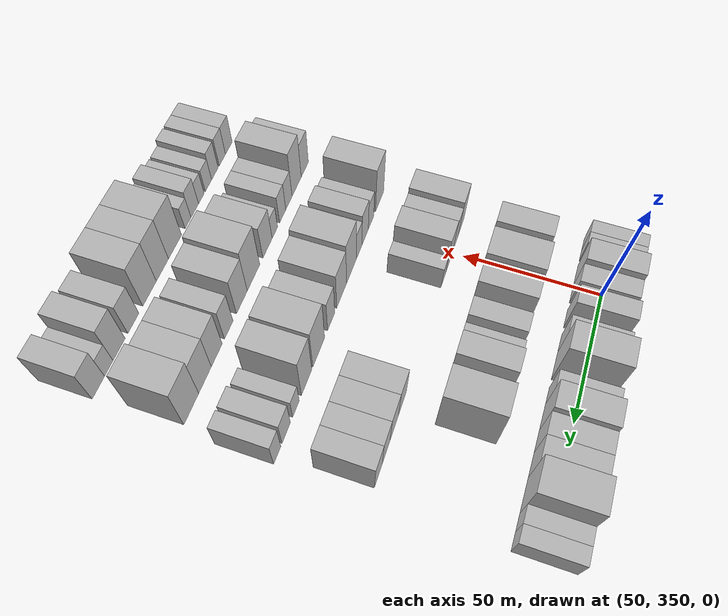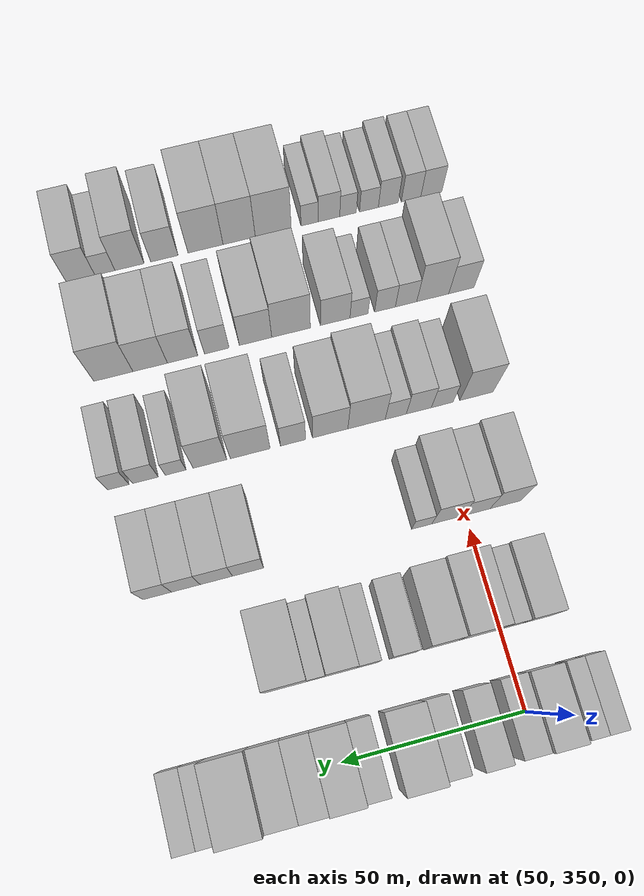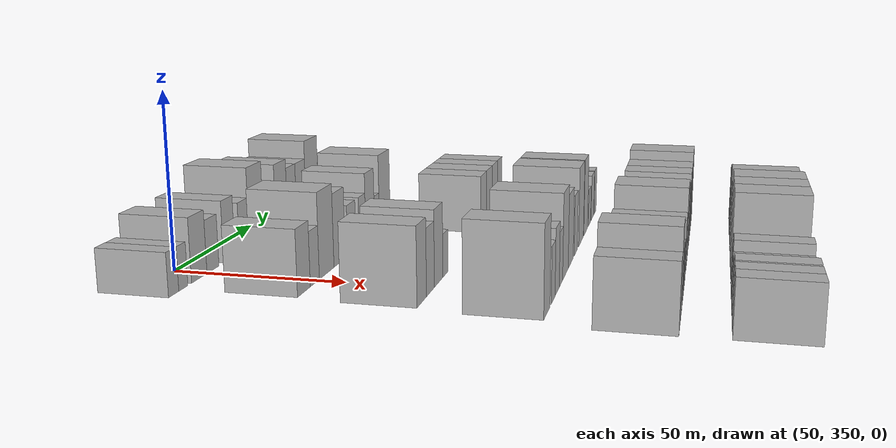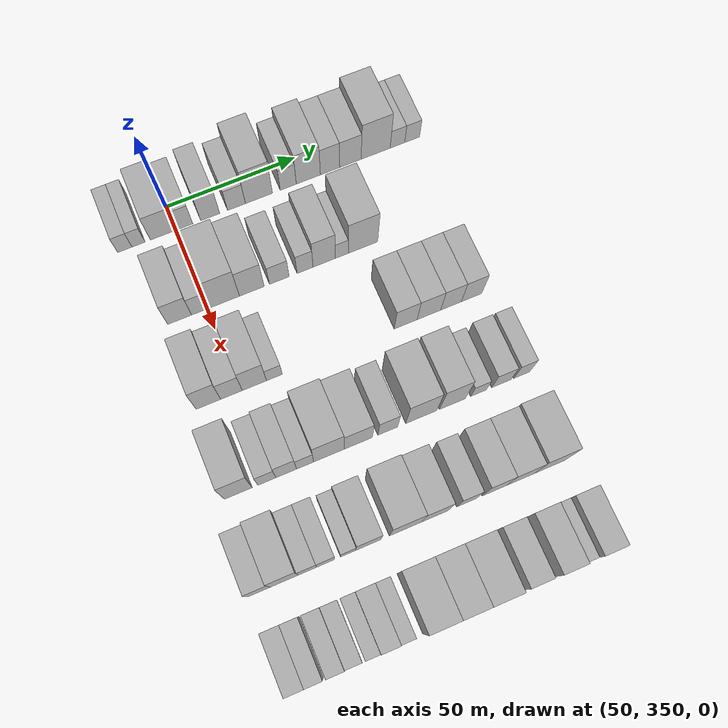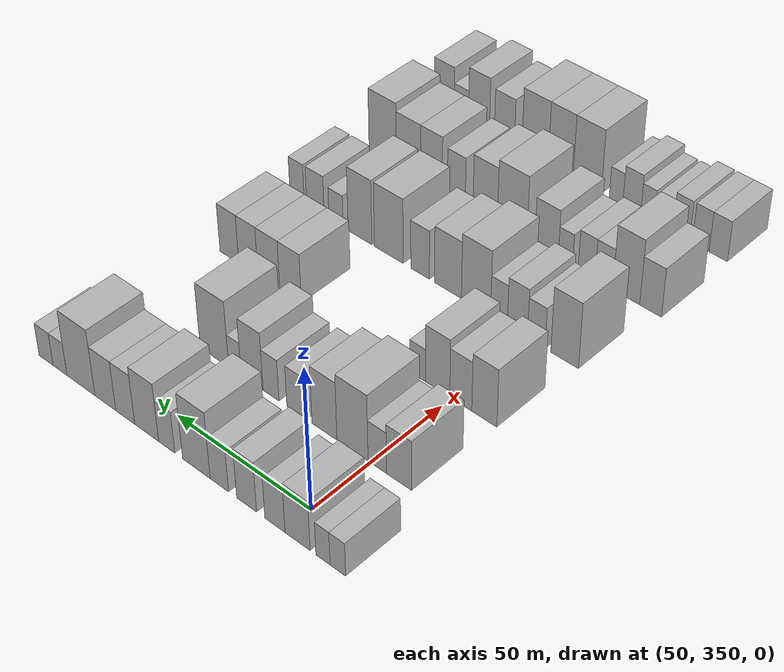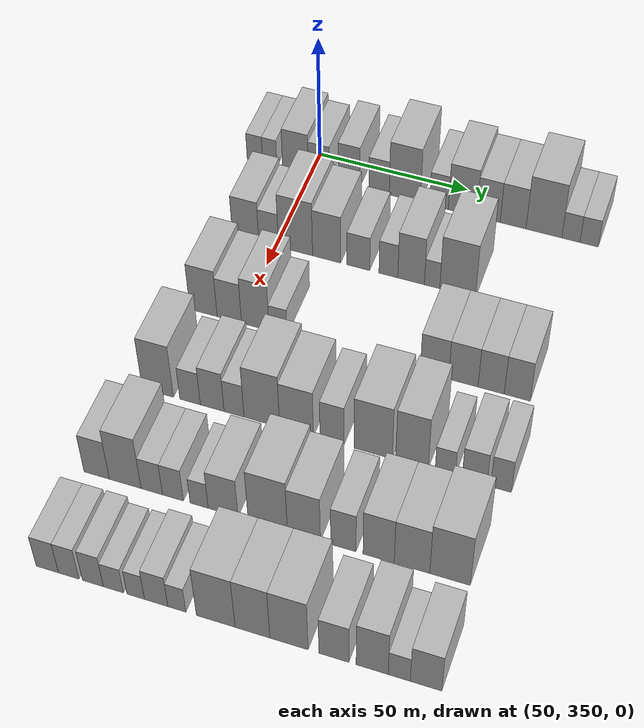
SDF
<sdf version="1.6">
 <world name="default">
  <model name="building_95">
   <static>1</static>
   <pose>50.0000 330.9651 0 0.000000 0.000000 0.000000</pose>
   <link name="link">
    <pose>0 0 6.00 0 0 0</pose>
    <collision name="collision"><geometry><box><size>20.0000 5.3511 12.0000</size></box></geometry></collision>
    <visual name="visual">
     <cast_shadows>0</cast_shadows>
     <geometry><box><size>20.0000 5.3511 12.0000</size></box></geometry>
     <material>
      <script>
       <uri>model://HANNAS_wall/materials/scripts</uri>
       <uri>model://HANNAS_wall/materials/textures</uri>
       <name>vrc/HANNAS_wall</name>
      </script>
     </material>
    </visual>
   </link>
  </model>
  <model name="building_96">
   <static>1</static>
   <pose>50.0000 336.0909 0 0.000000 0.000000 0.000000</pose>
   <link name="link">
    <pose>0 0 6.00 0 0 0</pose>
    <collision name="collision"><geometry><box><size>20.0000 4.9005 12.0000</size></box></geometry></collision>
    <visual name="visual">
     <cast_shadows>0</cast_shadows>
     <geometry><box><size>20.0000 4.9005 12.0000</size></box></geometry>
     <material>
      <script>
       <uri>model://HANNAS_wall/materials/scripts</uri>
       <uri>model://HANNAS_wall/materials/textures</uri>
       <name>vrc/HANNAS_wall</name>
      </script>
     </material>
    </visual>
   </link>
  </model>
  <model name="building_97">
   <static>1</static>
   <pose>50.0000 344.9675 0 0.000000 0.000000 0.000000</pose>
   <link name="link">
    <pose>0 0 9.00 0 0 0</pose>
    <collision name="collision"><geometry><box><size>20.0000 8.8527 18.0000</size></box></geometry></collision>
    <visual name="visual">
     <cast_shadows>0</cast_shadows>
     <geometry><box><size>20.0000 8.8527 18.0000</size></box></geometry>
     <material>
      <script>
       <uri>model://HANNAS_wall/materials/scripts</uri>
       <uri>model://HANNAS_wall/materials/textures</uri>
       <name>vrc/HANNAS_wall</name>
      </script>
     </material>
    </visual>
   </link>
  </model>
  <model name="building_98">
   <static>1</static>
   <pose>50.0000 353.0177 0 0.000000 0.000000 0.000000</pose>
   <link name="link">
    <pose>0 0 7.50 0 0 0</pose>
    <collision name="collision"><geometry><box><size>20.0000 7.2477 15.0000</size></box></geometry></collision>
    <visual name="visual">
     <cast_shadows>0</cast_shadows>
     <geometry><box><size>20.0000 7.2477 15.0000</size></box></geometry>
     <material>
      <script>
       <uri>model://HANNAS_wall/materials/scripts</uri>
       <uri>model://HANNAS_wall/materials/textures</uri>
       <name>vrc/HANNAS_wall</name>
      </script>
     </material>
    </visual>
   </link>
  </model>
  <model name="building_99">
   <static>1</static>
   <pose>50.0000 363.2852 0 0.000000 0.000000 0.000000</pose>
   <link name="link">
    <pose>0 0 9.00 0 0 0</pose>
    <collision name="collision"><geometry><box><size>20.0000 7.2873 18.0000</size></box></geometry></collision>
    <visual name="visual">
     <cast_shadows>0</cast_shadows>
     <geometry><box><size>20.0000 7.2873 18.0000</size></box></geometry>
     <material>
      <script>
       <uri>model://HANNAS_wall/materials/scripts</uri>
       <uri>model://HANNAS_wall/materials/textures</uri>
       <name>vrc/HANNAS_wall</name>
      </script>
     </material>
    </visual>
   </link>
  </model>
  <model name="building_100">
   <static>1</static>
   <pose>50.0000 373.3646 0 0.000000 0.000000 0.000000</pose>
   <link name="link">
    <pose>0 0 7.50 0 0 0</pose>
    <collision name="collision"><geometry><box><size>20.0000 6.8715 15.0000</size></box></geometry></collision>
    <visual name="visual">
     <cast_shadows>0</cast_shadows>
     <geometry><box><size>20.0000 6.8715 15.0000</size></box></geometry>
     <material>
      <script>
       <uri>model://HANNAS_wall/materials/scripts</uri>
       <uri>model://HANNAS_wall/materials/textures</uri>
       <name>vrc/HANNAS_wall</name>
      </script>
     </material>
    </visual>
   </link>
  </model>
  <model name="building_101">
   <static>1</static>
   <pose>50.0000 382.0335 0 0.000000 0.000000 0.000000</pose>
   <link name="link">
    <pose>0 0 12.00 0 0 0</pose>
    <collision name="collision"><geometry><box><size>20.0000 10.4663 24.0000</size></box></geometry></collision>
    <visual name="visual">
     <cast_shadows>0</cast_shadows>
     <geometry><box><size>20.0000 10.4663 24.0000</size></box></geometry>
     <material>
      <script>
       <uri>model://HANNAS_wall/materials/scripts</uri>
       <uri>model://HANNAS_wall/materials/textures</uri>
       <name>vrc/HANNAS_wall</name>
      </script>
     </material>
    </visual>
   </link>
  </model>
  <model name="building_102">
   <static>1</static>
   <pose>50.0000 393.3994 0 0.000000 0.000000 0.000000</pose>
   <link name="link">
    <pose>0 0 7.50 0 0 0</pose>
    <collision name="collision"><geometry><box><size>20.0000 6.2655 15.0000</size></box></geometry></collision>
    <visual name="visual">
     <cast_shadows>0</cast_shadows>
     <geometry><box><size>20.0000 6.2655 15.0000</size></box></geometry>
     <material>
      <script>
       <uri>model://HANNAS_wall/materials/scripts</uri>
       <uri>model://HANNAS_wall/materials/textures</uri>
       <name>vrc/HANNAS_wall</name>
      </script>
     </material>
    </visual>
   </link>
  </model>
  <model name="building_103">
   <static>1</static>
   <pose>50.0000 401.2380 0 0.000000 0.000000 0.000000</pose>
   <link name="link">
    <pose>0 0 10.50 0 0 0</pose>
    <collision name="collision"><geometry><box><size>20.0000 9.4116 21.0000</size></box></geometry></collision>
    <visual name="visual">
     <cast_shadows>0</cast_shadows>
     <geometry><box><size>20.0000 9.4116 21.0000</size></box></geometry>
     <material>
      <script>
       <uri>model://HANNAS_wall/materials/scripts</uri>
       <uri>model://HANNAS_wall/materials/textures</uri>
       <name>vrc/HANNAS_wall</name>
      </script>
     </material>
    </visual>
   </link>
  </model>
  <model name="building_104">
   <static>1</static>
   <pose>50.0000 409.7510 0 0.000000 0.000000 0.000000</pose>
   <link name="link">
    <pose>0 0 9.00 0 0 0</pose>
    <collision name="collision"><geometry><box><size>20.0000 7.6143 18.0000</size></box></geometry></collision>
    <visual name="visual">
     <cast_shadows>0</cast_shadows>
     <geometry><box><size>20.0000 7.6143 18.0000</size></box></geometry>
     <material>
      <script>
       <uri>model://HANNAS_wall/materials/scripts</uri>
       <uri>model://HANNAS_wall/materials/textures</uri>
       <name>vrc/HANNAS_wall</name>
      </script>
     </material>
    </visual>
   </link>
  </model>
  <model name="building_105">
   <static>1</static>
   <pose>50.0000 417.7741 0 0.000000 0.000000 0.000000</pose>
   <link name="link">
    <pose>0 0 9.00 0 0 0</pose>
    <collision name="collision"><geometry><box><size>20.0000 8.4319 18.0000</size></box></geometry></collision>
    <visual name="visual">
     <cast_shadows>0</cast_shadows>
     <geometry><box><size>20.0000 8.4319 18.0000</size></box></geometry>
     <material>
      <script>
       <uri>model://HANNAS_wall/materials/scripts</uri>
       <uri>model://HANNAS_wall/materials/textures</uri>
       <name>vrc/HANNAS_wall</name>
      </script>
     </material>
    </visual>
   </link>
  </model>
  <model name="building_106">
   <static>1</static>
   <pose>50.0000 427.7877 0 0.000000 0.000000 0.000000</pose>
   <link name="link">
    <pose>0 0 12.00 0 0 0</pose>
    <collision name="collision"><geometry><box><size>20.0000 11.5953 24.0000</size></box></geometry></collision>
    <visual name="visual">
     <cast_shadows>0</cast_shadows>
     <geometry><box><size>20.0000 11.5953 24.0000</size></box></geometry>
     <material>
      <script>
       <uri>model://HANNAS_wall/materials/scripts</uri>
       <uri>model://HANNAS_wall/materials/textures</uri>
       <name>vrc/HANNAS_wall</name>
      </script>
     </material>
    </visual>
   </link>
  </model>
  <model name="building_107">
   <static>1</static>
   <pose>50.0000 436.5020 0 0.000000 0.000000 0.000000</pose>
   <link name="link">
    <pose>0 0 6.00 0 0 0</pose>
    <collision name="collision"><geometry><box><size>20.0000 5.8332 12.0000</size></box></geometry></collision>
    <visual name="visual">
     <cast_shadows>0</cast_shadows>
     <geometry><box><size>20.0000 5.8332 12.0000</size></box></geometry>
     <material>
      <script>
       <uri>model://HANNAS_wall/materials/scripts</uri>
       <uri>model://HANNAS_wall/materials/textures</uri>
       <name>vrc/HANNAS_wall</name>
      </script>
     </material>
    </visual>
   </link>
  </model>
  <model name="building_108">
   <static>1</static>
   <pose>50.0000 442.3752 0 0.000000 0.000000 0.000000</pose>
   <link name="link">
    <pose>0 0 6.00 0 0 0</pose>
    <collision name="collision"><geometry><box><size>20.0000 5.9131 12.0000</size></box></geometry></collision>
    <visual name="visual">
     <cast_shadows>0</cast_shadows>
     <geometry><box><size>20.0000 5.9131 12.0000</size></box></geometry>
     <material>
      <script>
       <uri>model://HANNAS_wall/materials/scripts</uri>
       <uri>model://HANNAS_wall/materials/textures</uri>
       <name>vrc/HANNAS_wall</name>
      </script>
     </material>
    </visual>
   </link>
  </model>
  <model name="building_215">
   <static>1</static>
   <pose>82.0000 339.9055 0 0.000000 0.000000 0.000000</pose>
   <link name="link">
    <pose>0 0 9.00 0 0 0</pose>
    <collision name="collision"><geometry><box><size>20.0000 8.8324 18.0000</size></box></geometry></collision>
    <visual name="visual">
     <cast_shadows>0</cast_shadows>
     <geometry><box><size>20.0000 8.8324 18.0000</size></box></geometry>
     <material>
      <script>
       <uri>model://HANNAS_wall/materials/scripts</uri>
       <uri>model://HANNAS_wall/materials/textures</uri>
       <name>vrc/HANNAS_wall</name>
      </script>
     </material>
    </visual>
   </link>
  </model>
  <model name="building_216">
   <static>1</static>
   <pose>82.0000 347.6006 0 0.000000 0.000000 0.000000</pose>
   <link name="link">
    <pose>0 0 7.50 0 0 0</pose>
    <collision name="collision"><geometry><box><size>20.0000 6.5579 15.0000</size></box></geometry></collision>
    <visual name="visual">
     <cast_shadows>0</cast_shadows>
     <geometry><box><size>20.0000 6.5579 15.0000</size></box></geometry>
     <material>
      <script>
       <uri>model://HANNAS_wall/materials/scripts</uri>
       <uri>model://HANNAS_wall/materials/textures</uri>
       <name>vrc/HANNAS_wall</name>
      </script>
     </material>
    </visual>
   </link>
  </model>
  <model name="building_217">
   <static>1</static>
   <pose>82.0000 356.5135 0 0.000000 0.000000 0.000000</pose>
   <link name="link">
    <pose>0 0 12.00 0 0 0</pose>
    <collision name="collision"><geometry><box><size>20.0000 11.2678 24.0000</size></box></geometry></collision>
    <visual name="visual">
     <cast_shadows>0</cast_shadows>
     <geometry><box><size>20.0000 11.2678 24.0000</size></box></geometry>
     <material>
      <script>
       <uri>model://HANNAS_wall/materials/scripts</uri>
       <uri>model://HANNAS_wall/materials/textures</uri>
       <name>vrc/HANNAS_wall</name>
      </script>
     </material>
    </visual>
   </link>
  </model>
  <model name="building_218">
   <static>1</static>
   <pose>82.0000 366.7776 0 0.000000 0.000000 0.000000</pose>
   <link name="link">
    <pose>0 0 10.50 0 0 0</pose>
    <collision name="collision"><geometry><box><size>20.0000 9.2605 21.0000</size></box></geometry></collision>
    <visual name="visual">
     <cast_shadows>0</cast_shadows>
     <geometry><box><size>20.0000 9.2605 21.0000</size></box></geometry>
     <material>
      <script>
       <uri>model://HANNAS_wall/materials/scripts</uri>
       <uri>model://HANNAS_wall/materials/textures</uri>
       <name>vrc/HANNAS_wall</name>
      </script>
     </material>
    </visual>
   </link>
  </model>
  <model name="building_219">
   <static>1</static>
   <pose>82.0000 377.1192 0 0.000000 0.000000 0.000000</pose>
   <link name="link">
    <pose>0 0 7.50 0 0 0</pose>
    <collision name="collision"><geometry><box><size>20.0000 7.4227 15.0000</size></box></geometry></collision>
    <visual name="visual">
     <cast_shadows>0</cast_shadows>
     <geometry><box><size>20.0000 7.4227 15.0000</size></box></geometry>
     <material>
      <script>
       <uri>model://HANNAS_wall/materials/scripts</uri>
       <uri>model://HANNAS_wall/materials/textures</uri>
       <name>vrc/HANNAS_wall</name>
      </script>
     </material>
    </visual>
   </link>
  </model>
  <model name="building_220">
   <static>1</static>
   <pose>82.0000 386.8757 0 0.000000 0.000000 0.000000</pose>
   <link name="link">
    <pose>0 0 7.50 0 0 0</pose>
    <collision name="collision"><geometry><box><size>20.0000 6.0902 15.0000</size></box></geometry></collision>
    <visual name="visual">
     <cast_shadows>0</cast_shadows>
     <geometry><box><size>20.0000 6.0902 15.0000</size></box></geometry>
     <material>
      <script>
       <uri>model://HANNAS_wall/materials/scripts</uri>
       <uri>model://HANNAS_wall/materials/textures</uri>
       <name>vrc/HANNAS_wall</name>
      </script>
     </material>
    </visual>
   </link>
  </model>
  <model name="building_221">
   <static>1</static>
   <pose>82.0000 394.1992 0 0.000000 0.000000 0.000000</pose>
   <link name="link">
    <pose>0 0 10.50 0 0 0</pose>
    <collision name="collision"><geometry><box><size>20.0000 8.5570 21.0000</size></box></geometry></collision>
    <visual name="visual">
     <cast_shadows>0</cast_shadows>
     <geometry><box><size>20.0000 8.5570 21.0000</size></box></geometry>
     <material>
      <script>
       <uri>model://HANNAS_wall/materials/scripts</uri>
       <uri>model://HANNAS_wall/materials/textures</uri>
       <name>vrc/HANNAS_wall</name>
      </script>
     </material>
    </visual>
   </link>
  </model>
  <model name="building_222">
   <static>1</static>
   <pose>82.0000 400.9262 0 0.000000 0.000000 0.000000</pose>
   <link name="link">
    <pose>0 0 6.00 0 0 0</pose>
    <collision name="collision"><geometry><box><size>20.0000 4.8971 12.0000</size></box></geometry></collision>
    <visual name="visual">
     <cast_shadows>0</cast_shadows>
     <geometry><box><size>20.0000 4.8971 12.0000</size></box></geometry>
     <material>
      <script>
       <uri>model://HANNAS_wall/materials/scripts</uri>
       <uri>model://HANNAS_wall/materials/textures</uri>
       <name>vrc/HANNAS_wall</name>
      </script>
     </material>
    </visual>
   </link>
  </model>
  <model name="building_223">
   <static>1</static>
   <pose>82.0000 409.0533 0 0.000000 0.000000 0.000000</pose>
   <link name="link">
    <pose>0 0 12.00 0 0 0</pose>
    <collision name="collision"><geometry><box><size>20.0000 11.3570 24.0000</size></box></geometry></collision>
    <visual name="visual">
     <cast_shadows>0</cast_shadows>
     <geometry><box><size>20.0000 11.3570 24.0000</size></box></geometry>
     <material>
      <script>
       <uri>model://HANNAS_wall/materials/scripts</uri>
       <uri>model://HANNAS_wall/materials/textures</uri>
       <name>vrc/HANNAS_wall</name>
      </script>
     </material>
    </visual>
   </link>
  </model>
  <model name="building_325">
   <static>1</static>
   <pose>114.0000 338.5198 0 0.000000 0.000000 0.000000</pose>
   <link name="link">
    <pose>0 0 10.50 0 0 0</pose>
    <collision name="collision"><geometry><box><size>20.0000 8.8559 21.0000</size></box></geometry></collision>
    <visual name="visual">
     <cast_shadows>0</cast_shadows>
     <geometry><box><size>20.0000 8.8559 21.0000</size></box></geometry>
     <material>
      <script>
       <uri>model://HANNAS_wall/materials/scripts</uri>
       <uri>model://HANNAS_wall/materials/textures</uri>
       <name>vrc/HANNAS_wall</name>
      </script>
     </material>
    </visual>
   </link>
  </model>
  <model name="building_326">
   <static>1</static>
   <pose>114.0000 346.8800 0 0.000000 0.000000 0.000000</pose>
   <link name="link">
    <pose>0 0 9.00 0 0 0</pose>
    <collision name="collision"><geometry><box><size>20.0000 7.8645 18.0000</size></box></geometry></collision>
    <visual name="visual">
     <cast_shadows>0</cast_shadows>
     <geometry><box><size>20.0000 7.8645 18.0000</size></box></geometry>
     <material>
      <script>
       <uri>model://HANNAS_wall/materials/scripts</uri>
       <uri>model://HANNAS_wall/materials/textures</uri>
       <name>vrc/HANNAS_wall</name>
      </script>
     </material>
    </visual>
   </link>
  </model>
  <model name="building_327">
   <static>1</static>
   <pose>114.0000 355.2289 0 0.000000 0.000000 0.000000</pose>
   <link name="link">
    <pose>0 0 10.50 0 0 0</pose>
    <collision name="collision"><geometry><box><size>20.0000 8.8331 21.0000</size></box></geometry></collision>
    <visual name="visual">
     <cast_shadows>0</cast_shadows>
     <geometry><box><size>20.0000 8.8331 21.0000</size></box></geometry>
     <material>
      <script>
       <uri>model://HANNAS_wall/materials/scripts</uri>
       <uri>model://HANNAS_wall/materials/textures</uri>
       <name>vrc/HANNAS_wall</name>
      </script>
     </material>
    </visual>
   </link>
  </model>
  <model name="building_328">
   <static>1</static>
   <pose>114.0000 362.5262 0 0.000000 0.000000 0.000000</pose>
   <link name="link">
    <pose>0 0 6.00 0 0 0</pose>
    <collision name="collision"><geometry><box><size>20.0000 5.7616 12.0000</size></box></geometry></collision>
    <visual name="visual">
     <cast_shadows>0</cast_shadows>
     <geometry><box><size>20.0000 5.7616 12.0000</size></box></geometry>
     <material>
      <script>
       <uri>model://HANNAS_wall/materials/scripts</uri>
       <uri>model://HANNAS_wall/materials/textures</uri>
       <name>vrc/HANNAS_wall</name>
      </script>
     </material>
    </visual>
   </link>
  </model>
  <model name="building_329">
   <static>1</static>
   <pose>114.0000 411.4403 0 0.000000 0.000000 0.000000</pose>
   <link name="link">
    <pose>0 0 9.00 0 0 0</pose>
    <collision name="collision"><geometry><box><size>20.0000 8.6888 18.0000</size></box></geometry></collision>
    <visual name="visual">
     <cast_shadows>0</cast_shadows>
     <geometry><box><size>20.0000 8.6888 18.0000</size></box></geometry>
     <material>
      <script>
       <uri>model://HANNAS_wall/materials/scripts</uri>
       <uri>model://HANNAS_wall/materials/textures</uri>
       <name>vrc/HANNAS_wall</name>
      </script>
     </material>
    </visual>
   </link>
  </model>
  <model name="building_330">
   <static>1</static>
   <pose>114.0000 420.2679 0 0.000000 0.000000 0.000000</pose>
   <link name="link">
    <pose>0 0 9.00 0 0 0</pose>
    <collision name="collision"><geometry><box><size>20.0000 8.9664 18.0000</size></box></geometry></collision>
    <visual name="visual">
     <cast_shadows>0</cast_shadows>
     <geometry><box><size>20.0000 8.9664 18.0000</size></box></geometry>
     <material>
      <script>
       <uri>model://HANNAS_wall/materials/scripts</uri>
       <uri>model://HANNAS_wall/materials/textures</uri>
       <name>vrc/HANNAS_wall</name>
      </script>
     </material>
    </visual>
   </link>
  </model>
  <model name="building_331">
   <static>1</static>
   <pose>114.0000 428.7092 0 0.000000 0.000000 0.000000</pose>
   <link name="link">
    <pose>0 0 9.00 0 0 0</pose>
    <collision name="collision"><geometry><box><size>20.0000 7.9162 18.0000</size></box></geometry></collision>
    <visual name="visual">
     <cast_shadows>0</cast_shadows>
     <geometry><box><size>20.0000 7.9162 18.0000</size></box></geometry>
     <material>
      <script>
       <uri>model://HANNAS_wall/materials/scripts</uri>
       <uri>model://HANNAS_wall/materials/textures</uri>
       <name>vrc/HANNAS_wall</name>
      </script>
     </material>
    </visual>
   </link>
  </model>
  <model name="building_332">
   <static>1</static>
   <pose>114.0000 436.5910 0 0.000000 0.000000 0.000000</pose>
   <link name="link">
    <pose>0 0 9.00 0 0 0</pose>
    <collision name="collision"><geometry><box><size>20.0000 7.8474 18.0000</size></box></geometry></collision>
    <visual name="visual">
     <cast_shadows>0</cast_shadows>
     <geometry><box><size>20.0000 7.8474 18.0000</size></box></geometry>
     <material>
      <script>
       <uri>model://HANNAS_wall/materials/scripts</uri>
       <uri>model://HANNAS_wall/materials/textures</uri>
       <name>vrc/HANNAS_wall</name>
      </script>
     </material>
    </visual>
   </link>
  </model>
  <model name="building_431">
   <static>1</static>
   <pose>146.0000 337.0014 0 0.000000 0.000000 0.000000</pose>
   <link name="link">
    <pose>0 0 12.00 0 0 0</pose>
    <collision name="collision"><geometry><box><size>20.0000 9.8233 24.0000</size></box></geometry></collision>
    <visual name="visual">
     <cast_shadows>0</cast_shadows>
     <geometry><box><size>20.0000 9.8233 24.0000</size></box></geometry>
     <material>
      <script>
       <uri>model://HANNAS_wall/materials/scripts</uri>
       <uri>model://HANNAS_wall/materials/textures</uri>
       <name>vrc/HANNAS_wall</name>
      </script>
     </material>
    </visual>
   </link>
  </model>
  <model name="building_432">
   <static>1</static>
   <pose>146.0000 347.1135 0 0.000000 0.000000 0.000000</pose>
   <link name="link">
    <pose>0 0 7.50 0 0 0</pose>
    <collision name="collision"><geometry><box><size>20.0000 6.4010 15.0000</size></box></geometry></collision>
    <visual name="visual">
     <cast_shadows>0</cast_shadows>
     <geometry><box><size>20.0000 6.4010 15.0000</size></box></geometry>
     <material>
      <script>
       <uri>model://HANNAS_wall/materials/scripts</uri>
       <uri>model://HANNAS_wall/materials/textures</uri>
       <name>vrc/HANNAS_wall</name>
      </script>
     </material>
    </visual>
   </link>
  </model>
  <model name="building_433">
   <static>1</static>
   <pose>146.0000 353.9999 0 0.000000 0.000000 0.000000</pose>
   <link name="link">
    <pose>0 0 9.00 0 0 0</pose>
    <collision name="collision"><geometry><box><size>20.0000 7.3718 18.0000</size></box></geometry></collision>
    <visual name="visual">
     <cast_shadows>0</cast_shadows>
     <geometry><box><size>20.0000 7.3718 18.0000</size></box></geometry>
     <material>
      <script>
       <uri>model://HANNAS_wall/materials/scripts</uri>
       <uri>model://HANNAS_wall/materials/textures</uri>
       <name>vrc/HANNAS_wall</name>
      </script>
     </material>
    </visual>
   </link>
  </model>
  <model name="building_434">
   <static>1</static>
   <pose>146.0000 360.7739 0 0.000000 0.000000 0.000000</pose>
   <link name="link">
    <pose>0 0 7.50 0 0 0</pose>
    <collision name="collision"><geometry><box><size>20.0000 6.1762 15.0000</size></box></geometry></collision>
    <visual name="visual">
     <cast_shadows>0</cast_shadows>
     <geometry><box><size>20.0000 6.1762 15.0000</size></box></geometry>
     <material>
      <script>
       <uri>model://HANNAS_wall/materials/scripts</uri>
       <uri>model://HANNAS_wall/materials/textures</uri>
       <name>vrc/HANNAS_wall</name>
      </script>
     </material>
    </visual>
   </link>
  </model>
  <model name="building_435">
   <static>1</static>
   <pose>146.0000 369.3236 0 0.000000 0.000000 0.000000</pose>
   <link name="link">
    <pose>0 0 12.00 0 0 0</pose>
    <collision name="collision"><geometry><box><size>20.0000 10.9232 24.0000</size></box></geometry></collision>
    <visual name="visual">
     <cast_shadows>0</cast_shadows>
     <geometry><box><size>20.0000 10.9232 24.0000</size></box></geometry>
     <material>
      <script>
       <uri>model://HANNAS_wall/materials/scripts</uri>
       <uri>model://HANNAS_wall/materials/textures</uri>
       <name>vrc/HANNAS_wall</name>
      </script>
     </material>
    </visual>
   </link>
  </model>
  <model name="building_436">
   <static>1</static>
   <pose>146.0000 379.9260 0 0.000000 0.000000 0.000000</pose>
   <link name="link">
    <pose>0 0 10.50 0 0 0</pose>
    <collision name="collision"><geometry><box><size>20.0000 10.2815 21.0000</size></box></geometry></collision>
    <visual name="visual">
     <cast_shadows>0</cast_shadows>
     <geometry><box><size>20.0000 10.2815 21.0000</size></box></geometry>
     <material>
      <script>
       <uri>model://HANNAS_wall/materials/scripts</uri>
       <uri>model://HANNAS_wall/materials/textures</uri>
       <name>vrc/HANNAS_wall</name>
      </script>
     </material>
    </visual>
   </link>
  </model>
  <model name="building_437">
   <static>1</static>
   <pose>146.0000 390.6860 0 0.000000 0.000000 0.000000</pose>
   <link name="link">
    <pose>0 0 9.00 0 0 0</pose>
    <collision name="collision"><geometry><box><size>20.0000 7.2386 18.0000</size></box></geometry></collision>
    <visual name="visual">
     <cast_shadows>0</cast_shadows>
     <geometry><box><size>20.0000 7.2386 18.0000</size></box></geometry>
     <material>
      <script>
       <uri>model://HANNAS_wall/materials/scripts</uri>
       <uri>model://HANNAS_wall/materials/textures</uri>
       <name>vrc/HANNAS_wall</name>
      </script>
     </material>
    </visual>
   </link>
  </model>
  <model name="building_438">
   <static>1</static>
   <pose>146.0000 403.0190 0 0.000000 0.000000 0.000000</pose>
   <link name="link">
    <pose>0 0 12.00 0 0 0</pose>
    <collision name="collision"><geometry><box><size>20.0000 11.4273 24.0000</size></box></geometry></collision>
    <visual name="visual">
     <cast_shadows>0</cast_shadows>
     <geometry><box><size>20.0000 11.4273 24.0000</size></box></geometry>
     <material>
      <script>
       <uri>model://HANNAS_wall/materials/scripts</uri>
       <uri>model://HANNAS_wall/materials/textures</uri>
       <name>vrc/HANNAS_wall</name>
      </script>
     </material>
    </visual>
   </link>
  </model>
  <model name="building_439">
   <static>1</static>
   <pose>146.0000 414.5593 0 0.000000 0.000000 0.000000</pose>
   <link name="link">
    <pose>0 0 12.00 0 0 0</pose>
    <collision name="collision"><geometry><box><size>20.0000 9.6533 24.0000</size></box></geometry></collision>
    <visual name="visual">
     <cast_shadows>0</cast_shadows>
     <geometry><box><size>20.0000 9.6533 24.0000</size></box></geometry>
     <material>
      <script>
       <uri>model://HANNAS_wall/materials/scripts</uri>
       <uri>model://HANNAS_wall/materials/textures</uri>
       <name>vrc/HANNAS_wall</name>
      </script>
     </material>
    </visual>
   </link>
  </model>
  <model name="building_440">
   <static>1</static>
   <pose>146.0000 424.3354 0 0.000000 0.000000 0.000000</pose>
   <link name="link">
    <pose>0 0 6.00 0 0 0</pose>
    <collision name="collision"><geometry><box><size>20.0000 5.8988 12.0000</size></box></geometry></collision>
    <visual name="visual">
     <cast_shadows>0</cast_shadows>
     <geometry><box><size>20.0000 5.8988 12.0000</size></box></geometry>
     <material>
      <script>
       <uri>model://HANNAS_wall/materials/scripts</uri>
       <uri>model://HANNAS_wall/materials/textures</uri>
       <name>vrc/HANNAS_wall</name>
      </script>
     </material>
    </visual>
   </link>
  </model>
  <model name="building_441">
   <static>1</static>
   <pose>146.0000 432.9249 0 0.000000 0.000000 0.000000</pose>
   <link name="link">
    <pose>0 0 7.50 0 0 0</pose>
    <collision name="collision"><geometry><box><size>20.0000 7.2802 15.0000</size></box></geometry></collision>
    <visual name="visual">
     <cast_shadows>0</cast_shadows>
     <geometry><box><size>20.0000 7.2802 15.0000</size></box></geometry>
     <material>
      <script>
       <uri>model://HANNAS_wall/materials/scripts</uri>
       <uri>model://HANNAS_wall/materials/textures</uri>
       <name>vrc/HANNAS_wall</name>
      </script>
     </material>
    </visual>
   </link>
  </model>
  <model name="building_442">
   <static>1</static>
   <pose>146.0000 440.5945 0 0.000000 0.000000 0.000000</pose>
   <link name="link">
    <pose>0 0 7.50 0 0 0</pose>
    <collision name="collision"><geometry><box><size>20.0000 6.0592 15.0000</size></box></geometry></collision>
    <visual name="visual">
     <cast_shadows>0</cast_shadows>
     <geometry><box><size>20.0000 6.0592 15.0000</size></box></geometry>
     <material>
      <script>
       <uri>model://HANNAS_wall/materials/scripts</uri>
       <uri>model://HANNAS_wall/materials/textures</uri>
       <name>vrc/HANNAS_wall</name>
      </script>
     </material>
    </visual>
   </link>
  </model>
  <model name="building_552">
   <static>1</static>
   <pose>178.0000 331.7810 0 0.000000 0.000000 0.000000</pose>
   <link name="link">
    <pose>0 0 9.00 0 0 0</pose>
    <collision name="collision"><geometry><box><size>20.0000 7.7181 18.0000</size></box></geometry></collision>
    <visual name="visual">
     <cast_shadows>0</cast_shadows>
     <geometry><box><size>20.0000 7.7181 18.0000</size></box></geometry>
     <material>
      <script>
       <uri>model://HANNAS_wall/materials/scripts</uri>
       <uri>model://HANNAS_wall/materials/textures</uri>
       <name>vrc/HANNAS_wall</name>
      </script>
     </material>
    </visual>
   </link>
  </model>
  <model name="building_553">
   <static>1</static>
   <pose>178.0000 340.4791 0 0.000000 0.000000 0.000000</pose>
   <link name="link">
    <pose>0 0 12.00 0 0 0</pose>
    <collision name="collision"><geometry><box><size>20.0000 9.6782 24.0000</size></box></geometry></collision>
    <visual name="visual">
     <cast_shadows>0</cast_shadows>
     <geometry><box><size>20.0000 9.6782 24.0000</size></box></geometry>
     <material>
      <script>
       <uri>model://HANNAS_wall/materials/scripts</uri>
       <uri>model://HANNAS_wall/materials/textures</uri>
       <name>vrc/HANNAS_wall</name>
      </script>
     </material>
    </visual>
   </link>
  </model>
  <model name="building_554">
   <static>1</static>
   <pose>178.0000 348.5585 0 0.000000 0.000000 0.000000</pose>
   <link name="link">
    <pose>0 0 7.50 0 0 0</pose>
    <collision name="collision"><geometry><box><size>20.0000 6.4805 15.0000</size></box></geometry></collision>
    <visual name="visual">
     <cast_shadows>0</cast_shadows>
     <geometry><box><size>20.0000 6.4805 15.0000</size></box></geometry>
     <material>
      <script>
       <uri>model://HANNAS_wall/materials/scripts</uri>
       <uri>model://HANNAS_wall/materials/textures</uri>
       <name>vrc/HANNAS_wall</name>
      </script>
     </material>
    </visual>
   </link>
  </model>
  <model name="building_555">
   <static>1</static>
   <pose>178.0000 354.9276 0 0.000000 0.000000 0.000000</pose>
   <link name="link">
    <pose>0 0 7.50 0 0 0</pose>
    <collision name="collision"><geometry><box><size>20.0000 6.2577 15.0000</size></box></geometry></collision>
    <visual name="visual">
     <cast_shadows>0</cast_shadows>
     <geometry><box><size>20.0000 6.2577 15.0000</size></box></geometry>
     <material>
      <script>
       <uri>model://HANNAS_wall/materials/scripts</uri>
       <uri>model://HANNAS_wall/materials/textures</uri>
       <name>vrc/HANNAS_wall</name>
      </script>
     </material>
    </visual>
   </link>
  </model>
  <model name="building_556">
   <static>1</static>
   <pose>178.0000 362.7560 0 0.000000 0.000000 0.000000</pose>
   <link name="link">
    <pose>0 0 6.00 0 0 0</pose>
    <collision name="collision"><geometry><box><size>20.0000 5.3991 12.0000</size></box></geometry></collision>
    <visual name="visual">
     <cast_shadows>0</cast_shadows>
     <geometry><box><size>20.0000 5.3991 12.0000</size></box></geometry>
     <material>
      <script>
       <uri>model://HANNAS_wall/materials/scripts</uri>
       <uri>model://HANNAS_wall/materials/textures</uri>
       <name>vrc/HANNAS_wall</name>
      </script>
     </material>
    </visual>
   </link>
  </model>
  <model name="building_557">
   <static>1</static>
   <pose>178.0000 369.8858 0 0.000000 0.000000 0.000000</pose>
   <link name="link">
    <pose>0 0 9.00 0 0 0</pose>
    <collision name="collision"><geometry><box><size>20.0000 8.8605 18.0000</size></box></geometry></collision>
    <visual name="visual">
     <cast_shadows>0</cast_shadows>
     <geometry><box><size>20.0000 8.8605 18.0000</size></box></geometry>
     <material>
      <script>
       <uri>model://HANNAS_wall/materials/scripts</uri>
       <uri>model://HANNAS_wall/materials/textures</uri>
       <name>vrc/HANNAS_wall</name>
      </script>
     </material>
    </visual>
   </link>
  </model>
  <model name="building_558">
   <static>1</static>
   <pose>178.0000 383.0546 0 0.000000 0.000000 0.000000</pose>
   <link name="link">
    <pose>0 0 12.00 0 0 0</pose>
    <collision name="collision"><geometry><box><size>20.0000 11.4771 24.0000</size></box></geometry></collision>
    <visual name="visual">
     <cast_shadows>0</cast_shadows>
     <geometry><box><size>20.0000 11.4771 24.0000</size></box></geometry>
     <material>
      <script>
       <uri>model://HANNAS_wall/materials/scripts</uri>
       <uri>model://HANNAS_wall/materials/textures</uri>
       <name>vrc/HANNAS_wall</name>
      </script>
     </material>
    </visual>
   </link>
  </model>
  <model name="building_559">
   <static>1</static>
   <pose>178.0000 393.5975 0 0.000000 0.000000 0.000000</pose>
   <link name="link">
    <pose>0 0 10.50 0 0 0</pose>
    <collision name="collision"><geometry><box><size>20.0000 9.6087 21.0000</size></box></geometry></collision>
    <visual name="visual">
     <cast_shadows>0</cast_shadows>
     <geometry><box><size>20.0000 9.6087 21.0000</size></box></geometry>
     <material>
      <script>
       <uri>model://HANNAS_wall/materials/scripts</uri>
       <uri>model://HANNAS_wall/materials/textures</uri>
       <name>vrc/HANNAS_wall</name>
      </script>
     </material>
    </visual>
   </link>
  </model>
  <model name="building_560">
   <static>1</static>
   <pose>178.0000 405.0354 0 0.000000 0.000000 0.000000</pose>
   <link name="link">
    <pose>0 0 9.00 0 0 0</pose>
    <collision name="collision"><geometry><box><size>20.0000 7.2672 18.0000</size></box></geometry></collision>
    <visual name="visual">
     <cast_shadows>0</cast_shadows>
     <geometry><box><size>20.0000 7.2672 18.0000</size></box></geometry>
     <material>
      <script>
       <uri>model://HANNAS_wall/materials/scripts</uri>
       <uri>model://HANNAS_wall/materials/textures</uri>
       <name>vrc/HANNAS_wall</name>
      </script>
     </material>
    </visual>
   </link>
  </model>
  <model name="building_561">
   <static>1</static>
   <pose>178.0000 415.1168 0 0.000000 0.000000 0.000000</pose>
   <link name="link">
    <pose>0 0 10.50 0 0 0</pose>
    <collision name="collision"><geometry><box><size>20.0000 8.8956 21.0000</size></box></geometry></collision>
    <visual name="visual">
     <cast_shadows>0</cast_shadows>
     <geometry><box><size>20.0000 8.8956 21.0000</size></box></geometry>
     <material>
      <script>
       <uri>model://HANNAS_wall/materials/scripts</uri>
       <uri>model://HANNAS_wall/materials/textures</uri>
       <name>vrc/HANNAS_wall</name>
      </script>
     </material>
    </visual>
   </link>
  </model>
  <model name="building_562">
   <static>1</static>
   <pose>178.0000 424.5899 0 0.000000 0.000000 0.000000</pose>
   <link name="link">
    <pose>0 0 10.50 0 0 0</pose>
    <collision name="collision"><geometry><box><size>20.0000 10.0506 21.0000</size></box></geometry></collision>
    <visual name="visual">
     <cast_shadows>0</cast_shadows>
     <geometry><box><size>20.0000 10.0506 21.0000</size></box></geometry>
     <material>
      <script>
       <uri>model://HANNAS_wall/materials/scripts</uri>
       <uri>model://HANNAS_wall/materials/textures</uri>
       <name>vrc/HANNAS_wall</name>
      </script>
     </material>
    </visual>
   </link>
  </model>
  <model name="building_563">
   <static>1</static>
   <pose>178.0000 435.3117 0 0.000000 0.000000 0.000000</pose>
   <link name="link">
    <pose>0 0 12.00 0 0 0</pose>
    <collision name="collision"><geometry><box><size>20.0000 11.3929 24.0000</size></box></geometry></collision>
    <visual name="visual">
     <cast_shadows>0</cast_shadows>
     <geometry><box><size>20.0000 11.3929 24.0000</size></box></geometry>
     <material>
      <script>
       <uri>model://HANNAS_wall/materials/scripts</uri>
       <uri>model://HANNAS_wall/materials/textures</uri>
       <name>vrc/HANNAS_wall</name>
      </script>
     </material>
    </visual>
   </link>
  </model>
  <model name="building_664">
   <static>1</static>
   <pose>210.0000 331.4820 0 0.000000 0.000000 0.000000</pose>
   <link name="link">
    <pose>0 0 7.50 0 0 0</pose>
    <collision name="collision"><geometry><box><size>20.0000 6.5549 15.0000</size></box></geometry></collision>
    <visual name="visual">
     <cast_shadows>0</cast_shadows>
     <geometry><box><size>20.0000 6.5549 15.0000</size></box></geometry>
     <material>
      <script>
       <uri>model://HANNAS_wall/materials/scripts</uri>
       <uri>model://HANNAS_wall/materials/textures</uri>
       <name>vrc/HANNAS_wall</name>
      </script>
     </material>
    </visual>
   </link>
  </model>
  <model name="building_665">
   <static>1</static>
   <pose>210.0000 337.7865 0 0.000000 0.000000 0.000000</pose>
   <link name="link">
    <pose>0 0 7.50 0 0 0</pose>
    <collision name="collision"><geometry><box><size>20.0000 6.0540 15.0000</size></box></geometry></collision>
    <visual name="visual">
     <cast_shadows>0</cast_shadows>
     <geometry><box><size>20.0000 6.0540 15.0000</size></box></geometry>
     <material>
      <script>
       <uri>model://HANNAS_wall/materials/scripts</uri>
       <uri>model://HANNAS_wall/materials/textures</uri>
       <name>vrc/HANNAS_wall</name>
      </script>
     </material>
    </visual>
   </link>
  </model>
  <model name="building_666">
   <static>1</static>
   <pose>210.0000 344.8798 0 0.000000 0.000000 0.000000</pose>
   <link name="link">
    <pose>0 0 7.50 0 0 0</pose>
    <collision name="collision"><geometry><box><size>20.0000 6.1326 15.0000</size></box></geometry></collision>
    <visual name="visual">
     <cast_shadows>0</cast_shadows>
     <geometry><box><size>20.0000 6.1326 15.0000</size></box></geometry>
     <material>
      <script>
       <uri>model://HANNAS_wall/materials/scripts</uri>
       <uri>model://HANNAS_wall/materials/textures</uri>
       <name>vrc/HANNAS_wall</name>
      </script>
     </material>
    </visual>
   </link>
  </model>
  <model name="building_667">
   <static>1</static>
   <pose>210.0000 350.8707 0 0.000000 0.000000 0.000000</pose>
   <link name="link">
    <pose>0 0 6.00 0 0 0</pose>
    <collision name="collision"><geometry><box><size>20.0000 5.8491 12.0000</size></box></geometry></collision>
    <visual name="visual">
     <cast_shadows>0</cast_shadows>
     <geometry><box><size>20.0000 5.8491 12.0000</size></box></geometry>
     <material>
      <script>
       <uri>model://HANNAS_wall/materials/scripts</uri>
       <uri>model://HANNAS_wall/materials/textures</uri>
       <name>vrc/HANNAS_wall</name>
      </script>
     </material>
    </visual>
   </link>
  </model>
  <model name="building_668">
   <static>1</static>
   <pose>210.0000 357.3489 0 0.000000 0.000000 0.000000</pose>
   <link name="link">
    <pose>0 0 6.00 0 0 0</pose>
    <collision name="collision"><geometry><box><size>20.0000 5.1074 12.0000</size></box></geometry></collision>
    <visual name="visual">
     <cast_shadows>0</cast_shadows>
     <geometry><box><size>20.0000 5.1074 12.0000</size></box></geometry>
     <material>
      <script>
       <uri>model://HANNAS_wall/materials/scripts</uri>
       <uri>model://HANNAS_wall/materials/textures</uri>
       <name>vrc/HANNAS_wall</name>
      </script>
     </material>
    </visual>
   </link>
  </model>
  <model name="building_669">
   <static>1</static>
   <pose>210.0000 363.2639 0 0.000000 0.000000 0.000000</pose>
   <link name="link">
    <pose>0 0 7.50 0 0 0</pose>
    <collision name="collision"><geometry><box><size>20.0000 6.7225 15.0000</size></box></geometry></collision>
    <visual name="visual">
     <cast_shadows>0</cast_shadows>
     <geometry><box><size>20.0000 6.7225 15.0000</size></box></geometry>
     <material>
      <script>
       <uri>model://HANNAS_wall/materials/scripts</uri>
       <uri>model://HANNAS_wall/materials/textures</uri>
       <name>vrc/HANNAS_wall</name>
      </script>
     </material>
    </visual>
   </link>
  </model>
  <model name="building_670">
   <static>1</static>
   <pose>210.0000 369.2147 0 0.000000 0.000000 0.000000</pose>
   <link name="link">
    <pose>0 0 6.00 0 0 0</pose>
    <collision name="collision"><geometry><box><size>20.0000 5.1791 12.0000</size></box></geometry></collision>
    <visual name="visual">
     <cast_shadows>0</cast_shadows>
     <geometry><box><size>20.0000 5.1791 12.0000</size></box></geometry>
     <material>
      <script>
       <uri>model://HANNAS_wall/materials/scripts</uri>
       <uri>model://HANNAS_wall/materials/textures</uri>
       <name>vrc/HANNAS_wall</name>
      </script>
     </material>
    </visual>
   </link>
  </model>
  <model name="building_671">
   <static>1</static>
   <pose>210.0000 380.2912 0 0.000000 0.000000 0.000000</pose>
   <link name="link">
    <pose>0 0 12.00 0 0 0</pose>
    <collision name="collision"><geometry><box><size>20.0000 10.9739 24.0000</size></box></geometry></collision>
    <visual name="visual">
     <cast_shadows>0</cast_shadows>
     <geometry><box><size>20.0000 10.9739 24.0000</size></box></geometry>
     <material>
      <script>
       <uri>model://HANNAS_wall/materials/scripts</uri>
       <uri>model://HANNAS_wall/materials/textures</uri>
       <name>vrc/HANNAS_wall</name>
      </script>
     </material>
    </visual>
   </link>
  </model>
  <model name="building_672">
   <static>1</static>
   <pose>210.0000 390.6836 0 0.000000 0.000000 0.000000</pose>
   <link name="link">
    <pose>0 0 12.00 0 0 0</pose>
    <collision name="collision"><geometry><box><size>20.0000 9.8110 24.0000</size></box></geometry></collision>
    <visual name="visual">
     <cast_shadows>0</cast_shadows>
     <geometry><box><size>20.0000 9.8110 24.0000</size></box></geometry>
     <material>
      <script>
       <uri>model://HANNAS_wall/materials/scripts</uri>
       <uri>model://HANNAS_wall/materials/textures</uri>
       <name>vrc/HANNAS_wall</name>
      </script>
     </material>
    </visual>
   </link>
  </model>
  <model name="building_673">
   <static>1</static>
   <pose>210.0000 400.9053 0 0.000000 0.000000 0.000000</pose>
   <link name="link">
    <pose>0 0 12.00 0 0 0</pose>
    <collision name="collision"><geometry><box><size>20.0000 10.6324 24.0000</size></box></geometry></collision>
    <visual name="visual">
     <cast_shadows>0</cast_shadows>
     <geometry><box><size>20.0000 10.6324 24.0000</size></box></geometry>
     <material>
      <script>
       <uri>model://HANNAS_wall/materials/scripts</uri>
       <uri>model://HANNAS_wall/materials/textures</uri>
       <name>vrc/HANNAS_wall</name>
      </script>
     </material>
    </visual>
   </link>
  </model>
  <model name="building_674">
   <static>1</static>
   <pose>210.0000 413.3395 0 0.000000 0.000000 0.000000</pose>
   <link name="link">
    <pose>0 0 9.00 0 0 0</pose>
    <collision name="collision"><geometry><box><size>20.0000 8.2360 18.0000</size></box></geometry></collision>
    <visual name="visual">
     <cast_shadows>0</cast_shadows>
     <geometry><box><size>20.0000 8.2360 18.0000</size></box></geometry>
     <material>
      <script>
       <uri>model://HANNAS_wall/materials/scripts</uri>
       <uri>model://HANNAS_wall/materials/textures</uri>
       <name>vrc/HANNAS_wall</name>
      </script>
     </material>
    </visual>
   </link>
  </model>
  <model name="building_675">
   <static>1</static>
   <pose>210.0000 423.8263 0 0.000000 0.000000 0.000000</pose>
   <link name="link">
    <pose>0 0 10.50 0 0 0</pose>
    <collision name="collision"><geometry><box><size>20.0000 8.7374 21.0000</size></box></geometry></collision>
    <visual name="visual">
     <cast_shadows>0</cast_shadows>
     <geometry><box><size>20.0000 8.7374 21.0000</size></box></geometry>
     <material>
      <script>
       <uri>model://HANNAS_wall/materials/scripts</uri>
       <uri>model://HANNAS_wall/materials/textures</uri>
       <name>vrc/HANNAS_wall</name>
      </script>
     </material>
    </visual>
   </link>
  </model>
  <model name="building_676">
   <static>1</static>
   <pose>210.0000 431.1933 0 0.000000 0.000000 0.000000</pose>
   <link name="link">
    <pose>0 0 6.00 0 0 0</pose>
    <collision name="collision"><geometry><box><size>20.0000 5.9966 12.0000</size></box></geometry></collision>
    <visual name="visual">
     <cast_shadows>0</cast_shadows>
     <geometry><box><size>20.0000 5.9966 12.0000</size></box></geometry>
     <material>
      <script>
       <uri>model://HANNAS_wall/materials/scripts</uri>
       <uri>model://HANNAS_wall/materials/textures</uri>
       <name>vrc/HANNAS_wall</name>
      </script>
     </material>
    </visual>
   </link>
  </model>
  <model name="building_677">
   <static>1</static>
   <pose>210.0000 438.4518 0 0.000000 0.000000 0.000000</pose>
   <link name="link">
    <pose>0 0 9.00 0 0 0</pose>
    <collision name="collision"><geometry><box><size>20.0000 8.5204 18.0000</size></box></geometry></collision>
    <visual name="visual">
     <cast_shadows>0</cast_shadows>
     <geometry><box><size>20.0000 8.5204 18.0000</size></box></geometry>
     <material>
      <script>
       <uri>model://HANNAS_wall/materials/scripts</uri>
       <uri>model://HANNAS_wall/materials/textures</uri>
       <name>vrc/HANNAS_wall</name>
      </script>
     </material>
    </visual>
   </link>
  </model>
 </world>
</sdf>
